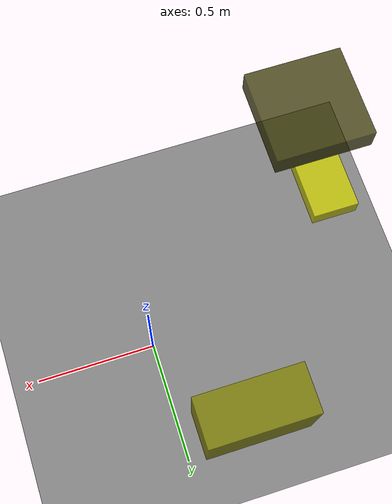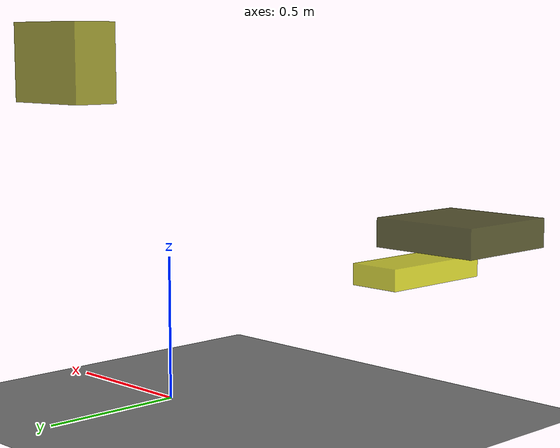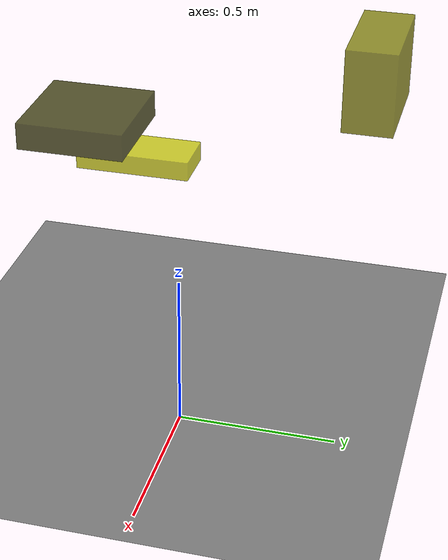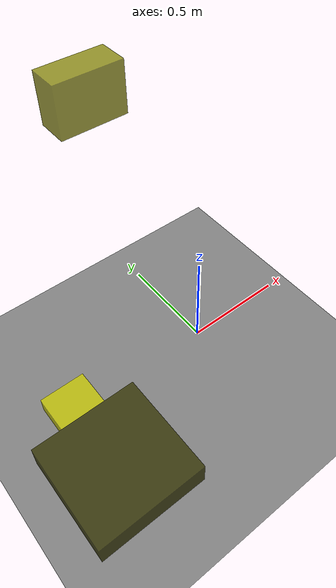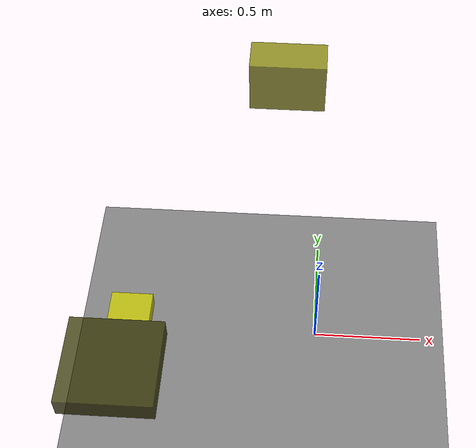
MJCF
<?xml version="1.0"?>
<mujoco model="obstacle_scene">
  <compiler angle="radian" coordinate="local"/>
  <option timestep="0.001" gravity="0 0 -9.81"/>

  <asset>
    <material name="obstacle_mat" rgba="0.8 0.8 0.0 0.8"/>
    <material name="ground_mat" rgba="0.5 0.5 0.5 1"/>
  </asset>

  <worldbody>
    <!-- Ground plane -->
    <geom name="ground" type="plane" size="3 3 0.1" material="ground_mat"/>

    <!-- Obstacles -->
    <body name="obstacle_0" pos="-0.818503 -0.568164 0.611894">
      <geom name="obs_0" type="box" size="0.196469 0.192478 0.049137" rgba="0.2 0.2 0.0 0.8"/>
    </body>
    <body name="obstacle_1" pos="-0.172360 0.536540 1.173256">
      <geom name="obs_1" type="box" size="0.158402 0.072486 0.121337" rgba="0.5 0.5 0.0 0.8"/>
    </body>
    <body name="obstacle_2" pos="-0.798282 -0.371805 0.507750">
      <geom name="obs_2" type="box" size="0.088283 0.203394 0.034606" rgba="0.8 0.8 0.0 0.8"/>
    </body>
  </worldbody>
</mujoco>
